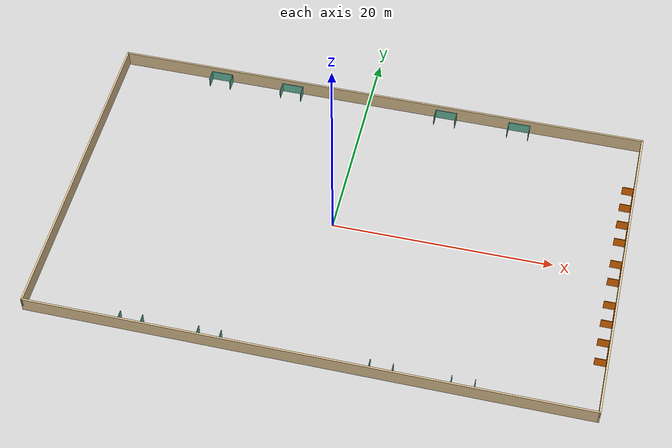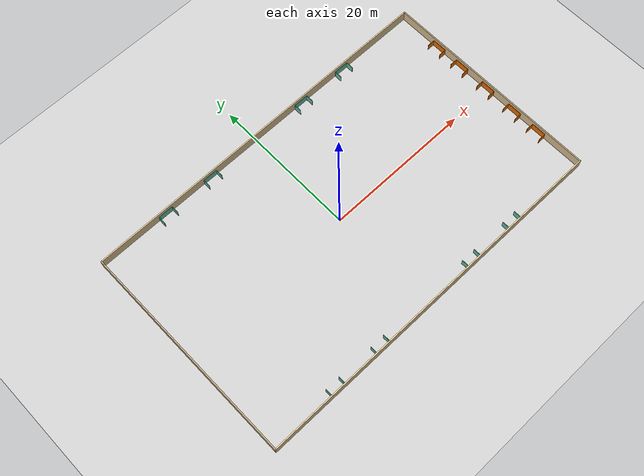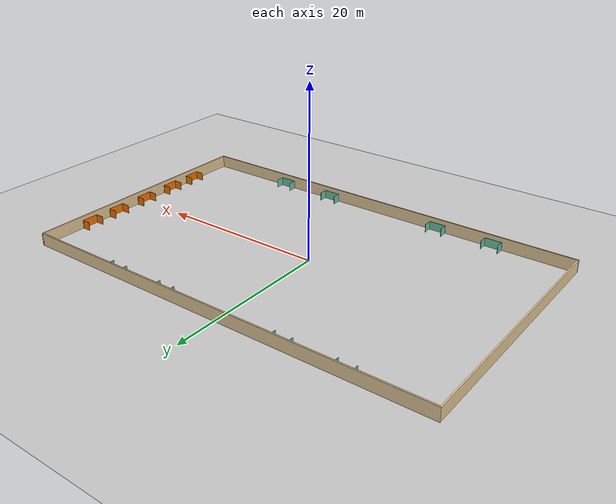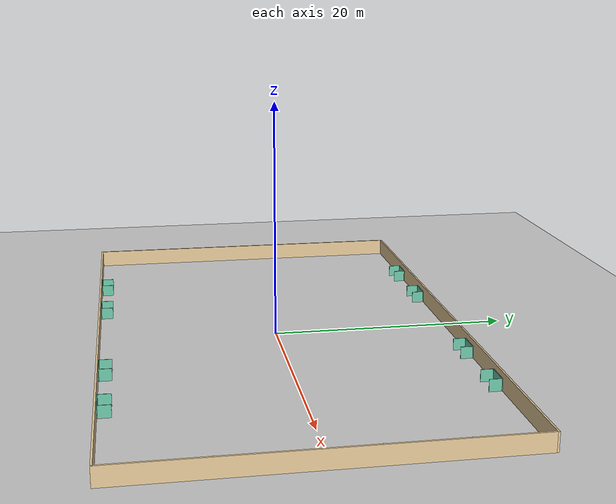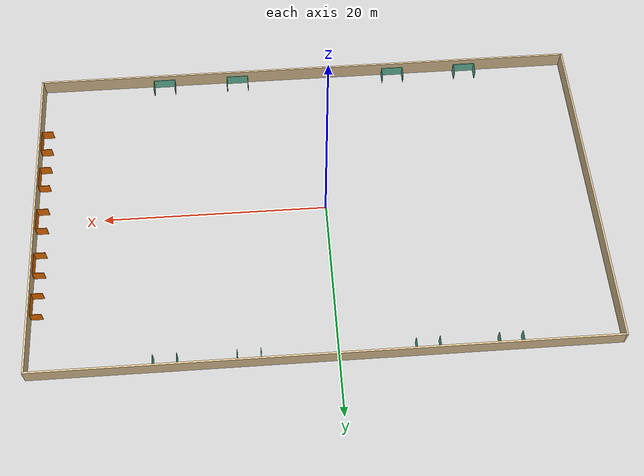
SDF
<sdf version="1.6">
 <world name="default">
  <include><uri>model://sun</uri></include>
  <include><uri>model://ground_plane</uri></include>
  <gravity>0 0 -9.8</gravity>
  <physics default="0" name="default_physics" type="ode">
   <max_step_size>0.001</max_step_size>
   <real_time_factor>1</real_time_factor>
   <real_time_update_rate>1000</real_time_update_rate>
  </physics>
  <model name="robot_park_01">
   <include><uri>model://robot_park</uri></include>
   <pose>14.5 -14.9 -0.05 0 0 0</pose>
  </model>
  <model name="robot_park_02">
   <include><uri>model://robot_park</uri></include>
   <pose>7.5 -14.9 -0.05 0 0 0</pose>
  </model>
  <model name="robot_park_03">
   <include><uri>model://robot_park</uri></include>
   <pose>-7.5 -14.9 -0.05 0 0 0</pose>
  </model>
  <model name="robot_park_04">
   <include><uri>model://robot_park</uri></include>
   <pose>-14.5 -14.9 -0.05 0 0 0</pose>
  </model>
  <model name="robot_park_05">
   <include><uri>model://robot_park</uri></include>
   <pose>14.5 14.9 0 0 0 3.141592654</pose>
  </model>
  <model name="robot_park_06">
   <include><uri>model://robot_park</uri></include>
   <pose>7.5 14.9 0 0 0 3.141592654</pose>
  </model>
  <model name="robot_park_07">
   <include><uri>model://robot_park</uri></include>
   <pose>-7.5 14.9 0 0 0 3.141592654</pose>
  </model>
  <model name="robot_park_08">
   <include><uri>model://robot_park</uri></include>
   <pose>-14.5 14.9 0 0 0 3.141592654</pose>
  </model>
  <model name="product_park_01">
   <include><uri>model://product_park</uri></include>
   <pose>25.91 8.5 0 0 0 1.570796327</pose>
  </model>
  <model name="product_park_02">
   <include><uri>model://product_park</uri></include>
   <pose>25.91 4.5 0 0 0 1.570796327</pose>
  </model>
  <model name="product_park_03">
   <include><uri>model://product_park</uri></include>
   <pose>25.91 0.0 0 0 0 1.570796327</pose>
  </model>
  <model name="product_park_04">
   <include><uri>model://product_park</uri></include>
   <pose>25.91 -4.5 0 0 0 1.570796327</pose>
  </model>
  <model name="product_park_05">
   <include><uri>model://product_park</uri></include>
   <pose>25.91 -8.5 0 0 0 1.570796327</pose>
  </model>
  <model name="walls_01"><include><uri>model://walls</uri></include></model>
  <physics type="ode">
   <real_time_update_rate>1000.0</real_time_update_rate>
   <max_step_size>0.001</max_step_size>
   <real_time_factor>1</real_time_factor>
   <ode>
    <solver>
     <type>quick</type>
     <iters>150</iters>
     <precon_iters>0</precon_iters>
     <sor>1.400000</sor>
     <use_dynamic_moi_rescaling>1</use_dynamic_moi_rescaling>
    </solver>
    <constraints>
     <cfm>0.00001</cfm>
     <erp>0.2</erp>
     <contact_max_correcting_vel>2000.000000</contact_max_correcting_vel>
     <contact_surface_layer>0.01000</contact_surface_layer>
    </constraints>
   </ode>
  </physics>
 </world>
</sdf>

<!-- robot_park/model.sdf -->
<sdf version='1.6'>
  <model name='robot_park'>
    <pose frame=''>0 0.5 0 0 -0 0</pose>
    <link name='Wall_11'>
      <collision name='Wall_11_Collision'>
        <geometry>
          <box>
            <size>1.05 0.05 1</size>
          </box>
        </geometry>
        <pose frame=''>0 0 0.5 0 -0 0</pose>
      </collision>
      <visual name='Wall_11_Visual'>
        <pose frame=''>0 0 0.5 0 -0 0</pose>
        <geometry>
          <box>
            <size>1.05 0.05 1</size>
          </box>
        </geometry>
        <material>
          <script>
            <uri>file://media/materials/scripts/gazebo.material</uri>
            <name>Gazebo/Grey</name>
          </script>
          <ambient>0.435294 0.796078 0.67451 1</ambient>
        </material>
        <meta>
          <layer>0</layer>
        </meta>
      </visual>
      <pose frame=''>-1 -0 0 0 -0 1.5708</pose>
    </link>
    <link name='Wall_13'>
      <collision name='Wall_13_Collision'>
        <geometry>
          <box>
            <size>2.05001 0.05 1</size>
          </box>
        </geometry>
        <pose frame=''>0 0 0.5 0 -0 0</pose>
      </collision>
      <visual name='Wall_13_Visual'>
        <pose frame=''>0 0 0.5 0 -0 0</pose>
        <geometry>
          <box>
            <size>2.05001 0.05 1</size>
          </box>
        </geometry>
        <material>
          <script>
            <uri>file://media/materials/scripts/gazebo.material</uri>
            <name>Gazebo/Grey</name>
          </script>
          <ambient>0.435294 0.796078 0.67451 1</ambient>
        </material>
        <meta>
          <layer>0</layer>
        </meta>
      </visual>
      <pose frame=''>0 -0.5 0 0 -0 0</pose>
    </link>
    <link name='Wall_15'>
      <collision name='Wall_15_Collision'>
        <geometry>
          <box>
            <size>1.05 0.05 1</size>
          </box>
        </geometry>
        <pose frame=''>0 0 0.5 0 -0 0</pose>
      </collision>
      <visual name='Wall_15_Visual'>
        <pose frame=''>0 0 0.5 0 -0 0</pose>
        <geometry>
          <box>
            <size>1.05 0.05 1</size>
          </box>
        </geometry>
        <material>
          <script>
            <uri>file://media/materials/scripts/gazebo.material</uri>
            <name>Gazebo/Grey</name>
          </script>
          <ambient>0.435294 0.796078 0.67451 1</ambient>
        </material>
        <meta>
          <layer>0</layer>
        </meta>
      </visual>
      <pose frame=''>1 -0 0 0 -0 1.5708</pose>
    </link>
    <static>1</static>
  </model>
</sdf>

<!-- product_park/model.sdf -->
<sdf version='1.6'>
  <model name='product_park'>
    <pose frame=''>0 0.5 0 0 -0 0</pose>
    <link name='Wall_11'>
      <collision name='Wall_11_Collision'>
        <geometry>
          <box>
            <size>1.05 0.05 1</size>
          </box>
        </geometry>
        <pose frame=''>0 0 0.5 0 -0 0</pose>
      </collision>
      <visual name='Wall_11_Visual'>
        <pose frame=''>0 0 0.5 0 -0 0</pose>
        <geometry>
          <box>
            <size>1.05 0.05 1</size>
          </box>
        </geometry>
        <material>
          <script>
            <uri>file://media/materials/scripts/gazebo.material</uri>
            <name>Gazebo/Grey</name>
          </script>
          <ambient>0.996078 0.47451 0.0196078 1</ambient>
        </material>
        <meta>
          <layer>0</layer>
        </meta>
      </visual>
      <pose frame=''>-1 -0 0 0 -0 1.5708</pose>
    </link>
    <link name='Wall_13'>
      <collision name='Wall_13_Collision'>
        <geometry>
          <box>
            <size>2.05001 0.05 1</size>
          </box>
        </geometry>
        <pose frame=''>0 0 0.5 0 -0 0</pose>
      </collision>
      <visual name='Wall_13_Visual'>
        <pose frame=''>0 0 0.5 0 -0 0</pose>
        <geometry>
          <box>
            <size>2.05001 0.05 1</size>
          </box>
        </geometry>
        <material>
          <script>
            <uri>file://media/materials/scripts/gazebo.material</uri>
            <name>Gazebo/Grey</name>
          </script>
          <ambient>0.996078 0.47451 0.0196078 1</ambient>
        </material>
        <meta>
          <layer>0</layer>
        </meta>
      </visual>
      <pose frame=''>0 -0.5 0 0 -0 0</pose>
    </link>
    <link name='Wall_15'>
      <collision name='Wall_15_Collision'>
        <geometry>
          <box>
            <size>1.05 0.05 1</size>
          </box>
        </geometry>
        <pose frame=''>0 0 0.5 0 -0 0</pose>
      </collision>
      <visual name='Wall_15_Visual'>
        <pose frame=''>0 0 0.5 0 -0 0</pose>
        <geometry>
          <box>
            <size>1.05 0.05 1</size>
          </box>
        </geometry>
        <material>
          <script>
            <uri>file://media/materials/scripts/gazebo.material</uri>
            <name>Gazebo/Grey</name>
          </script>
          <ambient>0.996078 0.47451 0.0196078 1</ambient>
        </material>
        <meta>
          <layer>0</layer>
        </meta>
      </visual>
      <pose frame=''>1 -0 0 0 -0 1.5708</pose>
    </link>
    <static>1</static>
  </model>
</sdf>

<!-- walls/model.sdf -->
<sdf version='1.6'>
  <model name='walls'>
    <pose frame=''>1 0 0 0 -0 0</pose>
    <link name='Wall_0'>
      <collision name='Wall_0_Collision'>
        <geometry>
          <box>
            <size>50.15 0.15 1.5</size>
          </box>
        </geometry>
        <pose frame=''>0 0 0.75 0 -0 0</pose>
      </collision>
      <visual name='Wall_0_Visual'>
        <pose frame=''>0 0 0.75 0 -0 0</pose>
        <geometry>
          <box>
            <size>50.15 0.15 1.5</size>
          </box>
        </geometry>
        <material>
          <script>
            <uri>file://media/materials/scripts/gazebo.material</uri>
            <name>Gazebo/Grey</name>
          </script>
          <ambient>0.921569 0.807843 0.615686 1</ambient>
        </material>
        <meta>
          <layer>0</layer>
        </meta>
      </visual>
      <pose frame=''>0 -15 0 0 -0 0</pose>
    </link>
    <link name='Wall_2'>
      <collision name='Wall_2_Collision'>
        <geometry>
          <box>
            <size>50.15 0.15 1.5</size>
          </box>
        </geometry>
        <pose frame=''>0 0 0.75 0 -0 0</pose>
      </collision>
      <visual name='Wall_2_Visual'>
        <pose frame=''>0 0 0.75 0 -0 0</pose>
        <geometry>
          <box>
            <size>50.15 0.15 1.5</size>
          </box>
        </geometry>
        <material>
          <script>
            <uri>file://media/materials/scripts/gazebo.material</uri>
            <name>Gazebo/Grey</name>
          </script>
          <ambient>0.921569 0.807843 0.615686 1</ambient>
        </material>
        <meta>
          <layer>0</layer>
        </meta>
      </visual>
      <pose frame=''>0 15 0 0 -0 0</pose>
    </link>
    <link name='Wall_5'>
      <collision name='Wall_5_Collision'>
        <geometry>
          <box>
            <size>30.15 0.15 1.5</size>
          </box>
        </geometry>
        <pose frame=''>0 0 0.75 0 -0 0</pose>
      </collision>
      <visual name='Wall_5_Visual'>
        <pose frame=''>0 0 0.75 0 -0 0</pose>
        <geometry>
          <box>
            <size>30.15 0.15 1.5</size>
          </box>
        </geometry>
        <material>
          <script>
            <uri>file://media/materials/scripts/gazebo.material</uri>
            <name>Gazebo/Grey</name>
          </script>
          <ambient>0.921569 0.807843 0.615686 1</ambient>
        </material>
        <meta>
          <layer>0</layer>
        </meta>
      </visual>
      <pose frame=''>-25 0 0 0 -0 1.5708</pose>
    </link>
    <link name='Wall_9'>
      <collision name='Wall_9_Collision'>
        <geometry>
          <box>
            <size>30.15 0.15 1.5</size>
          </box>
        </geometry>
        <pose frame=''>0 0 0.75 0 -0 0</pose>
      </collision>
      <visual name='Wall_9_Visual'>
        <pose frame=''>0 0 0.75 0 -0 0</pose>
        <geometry>
          <box>
            <size>30.15 0.15 1.5</size>
          </box>
        </geometry>
        <material>
          <script>
            <uri>file://media/materials/scripts/gazebo.material</uri>
            <name>Gazebo/Grey</name>
          </script>
          <ambient>0.921569 0.807843 0.615686 1</ambient>
        </material>
        <meta>
          <layer>0</layer>
        </meta>
      </visual>
      <pose frame=''>25 0 0 0 -0 1.5708</pose>
    </link>
    <static>1</static>
  </model>
</sdf>
